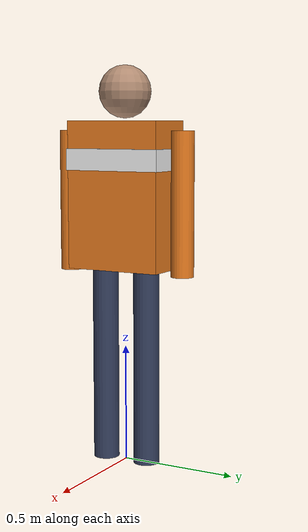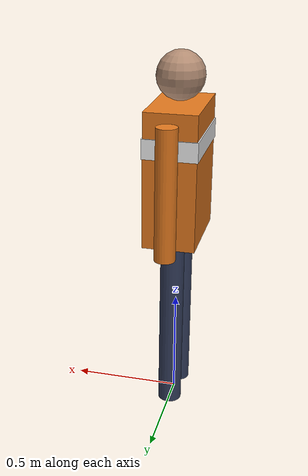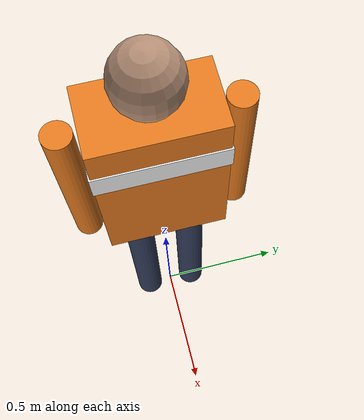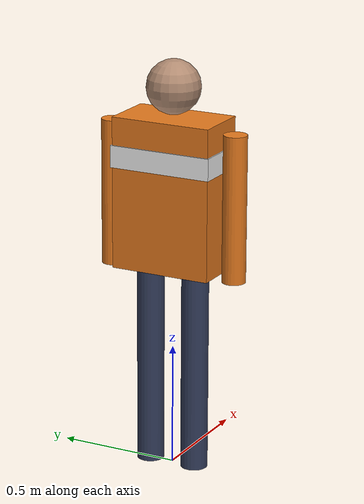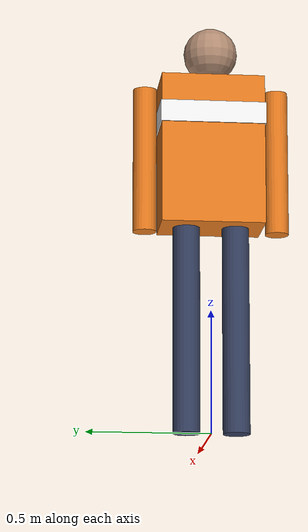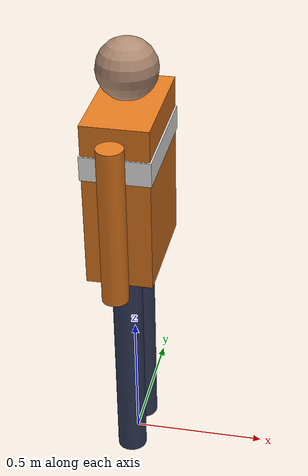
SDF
<?xml version="1.0"?>
<sdf version="1.10">
  <model name="person">

    <link name="body">
      <gravity>false</gravity>
      <!-- Inertia of the puck that touches nothing, since the rail carries the
           figure. Kept plausible rather than arbitrary. -->
      <inertial>
        <pose>0 0 0.12 0 0 0</pose>
        <mass>75.0</mass>
        <inertia>
          <ixx>1.267</ixx><ixy>0</ixy><ixz>0</ixz>
          <iyy>1.267</iyy><iyz>0</iyz>
          <izz>1.815</izz>
        </inertia>
      </inertial>

      <visual name="leg_left">
        <pose>0 0.10 0.42 0 0 0</pose>
        <geometry><cylinder><radius>0.055</radius><length>0.84</length></cylinder></geometry>
        <material>
          <ambient>0.15 0.18 0.28 1</ambient>
          <diffuse>0.20 0.24 0.36 1</diffuse>
        </material>
      </visual>
      <visual name="leg_right">
        <pose>0 -0.10 0.42 0 0 0</pose>
        <geometry><cylinder><radius>0.055</radius><length>0.84</length></cylinder></geometry>
        <material>
          <ambient>0.15 0.18 0.28 1</ambient>
          <diffuse>0.20 0.24 0.36 1</diffuse>
        </material>
      </visual>
      <visual name="torso">
        <pose>0 0 1.15 0 0 0</pose>
        <geometry><box><size>0.24 0.42 0.62</size></box></geometry>
        <material>
          <ambient>0.55 0.30 0.10 1</ambient>
          <diffuse>0.90 0.48 0.12 1</diffuse>
        </material>
      </visual>
      <visual name="arm_left">
        <pose>0 0.27 1.12 0 0 0</pose>
        <geometry><cylinder><radius>0.048</radius><length>0.60</length></cylinder></geometry>
        <material>
          <ambient>0.55 0.30 0.10 1</ambient>
          <diffuse>0.90 0.48 0.12 1</diffuse>
        </material>
      </visual>
      <visual name="arm_right">
        <pose>0 -0.27 1.12 0 0 0</pose>
        <geometry><cylinder><radius>0.048</radius><length>0.60</length></cylinder></geometry>
        <material>
          <ambient>0.55 0.30 0.10 1</ambient>
          <diffuse>0.90 0.48 0.12 1</diffuse>
        </material>
      </visual>
      <visual name="hi_vis_band">
        <pose>0 0 1.30 0 0 0</pose>
        <geometry><box><size>0.25 0.43 0.09</size></box></geometry>
        <material>
          <ambient>0.75 0.75 0.75 1</ambient>
          <diffuse>0.95 0.95 0.95 1</diffuse>
        </material>
      </visual>
      <visual name="head">
        <pose>0 0 1.58 0 0 0</pose>
        <geometry><sphere><radius>0.11</radius></sphere></geometry>
        <material>
          <ambient>0.45 0.35 0.30 1</ambient>
          <diffuse>0.70 0.55 0.45 1</diffuse>
        </material>
      </visual>

    </link>

    <plugin filename="gz-sim-velocity-control-system"
            name="gz::sim::systems::VelocityControl"/>
  </model>
</sdf>
